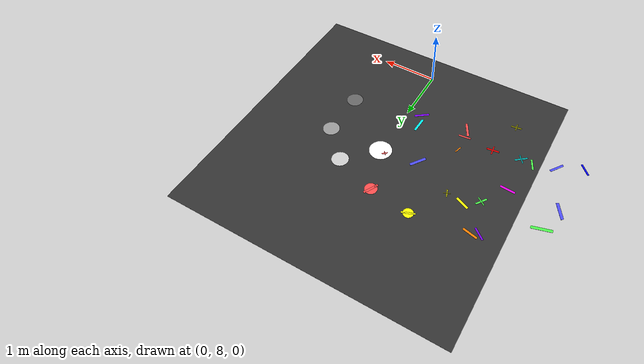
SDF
<sdf version="1.6">
 <world name="default">
  <model name="sector_0_2">
   <static>true</static>
   <pose>0 10 0.001 0 0 0</pose>
   <link name="link">
    <visual name="base">
     <geometry><box><size>5 5 0.001</size></box></geometry>
     <material><ambient>0.1 0.1 0.1 1</ambient><diffuse>0.2 0.2 0.2 1</diffuse></material>
    </visual>
    <visual name="spiral1">
     <pose>0 0 0.002 0 0 0</pose>
     <geometry><cylinder><radius>0.2</radius><length>0.001</length></cylinder></geometry>
     <material><ambient>1 1 1 1</ambient><diffuse>1 1 1 1</diffuse></material>
    </visual>
    <visual name="spiral2">
     <pose>0.5 0.5 0.002 0 0 0</pose>
     <geometry><cylinder><radius>0.15</radius><length>0.001</length></cylinder></geometry>
     <material><ambient>0.8 0.8 0.8 1</ambient><diffuse>0.8 0.8 0.8 1</diffuse></material>
    </visual>
    <visual name="spiral3">
     <pose>1 0 0.002 0 0 0</pose>
     <geometry><cylinder><radius>0.15</radius><length>0.001</length></cylinder></geometry>
     <material><ambient>0.6 0.6 0.6 1</ambient><diffuse>0.6 0.6 0.6 1</diffuse></material>
    </visual>
    <visual name="spiral4">
     <pose>1 -0.8 0.002 0 0 0</pose>
     <geometry><cylinder><radius>0.15</radius><length>0.001</length></cylinder></geometry>
     <material><ambient>0.4 0.4 0.4 1</ambient><diffuse>0.4 0.4 0.4 1</diffuse></material>
    </visual>
   </link>
  </model>
  <model name="letter_M_994">
   <static>true</static>
   <pose>-3.16 8.70 0.011 0 0 2.329</pose>
   <link name="link">
    <visual name="visual">
     <geometry><box><size>0.23 0.03 0.002</size></box></geometry>
     <material>
      <ambient>0.0 0.0 1.0 1</ambient>
      <diffuse>0.0 0.0 1.0 1</diffuse>
      <specular>0.1 0.1 0.1 1</specular>
     </material>
    </visual>
   </link>
  </model>
  <model name="letter_V_995">
   <static>true</static>
   <pose>-2.74 8.89 0.004 0 0 4.089</pose>
   <link name="link">
    <visual name="visual">
     <geometry><box><size>0.26 0.04 0.002</size></box></geometry>
     <material>
      <ambient>0.3 0.3 1.0 1</ambient>
      <diffuse>0.3 0.3 1.0 1</diffuse>
      <specular>0.1 0.1 0.1 1</specular>
     </material>
    </visual>
   </link>
  </model>
  <model name="letter_X_996">
   <static>true</static>
   <pose>-3.05 9.68 0.003 0 0 5.277</pose>
   <link name="link">
    <visual name="visual">
     <geometry><box><size>0.31 0.05 0.002</size></box></geometry>
     <material>
      <ambient>0.3 0.3 1.0 1</ambient>
      <diffuse>0.3 0.3 1.0 1</diffuse>
      <specular>0.1 0.1 0.1 1</specular>
     </material>
    </visual>
   </link>
  </model>
  <model name="letter_S_997">
   <static>true</static>
   <pose>-2.91 10.13 0.005 0 0 3.406</pose>
   <link name="link">
    <visual name="visual">
     <geometry><box><size>0.34 0.05 0.002</size></box></geometry>
     <material>
      <ambient>0.3 1.0 0.3 1</ambient>
      <diffuse>0.3 1.0 0.3 1</diffuse>
      <specular>0.1 0.1 0.1 1</specular>
     </material>
    </visual>
   </link>
  </model>
  <model name="letter_T_1054">
   <static>true</static>
   <pose>-1.84 8.38 0.010 0 0 3.263</pose>
   <link name="link">
    <visual name="visual">
     <geometry><box><size>0.19 0.03 0.002</size></box></geometry>
     <material>
      <ambient>0.5 0.5 0.0 1</ambient>
      <diffuse>0.5 0.5 0.0 1</diffuse>
      <specular>0.1 0.1 0.1 1</specular>
     </material>
    </visual>
    <visual name="visual2">
     <pose>0 0 0.001 0 0 1.57</pose>
     <geometry><box><size>0.15 0.02 0.001</size></box></geometry>
     <material><ambient>0.5 0.5 0.0 1</ambient><diffuse>0.5 0.5 0.0 1</diffuse></material>
    </visual>
   </link>
  </model>
  <model name="letter_Z_1056">
   <static>true</static>
   <pose>-2.36 9.02 0.004 0 0 5.157</pose>
   <link name="link">
    <visual name="visual">
     <geometry><box><size>0.22 0.03 0.002</size></box></geometry>
     <material>
      <ambient>0.3 1.0 0.3 1</ambient>
      <diffuse>0.3 1.0 0.3 1</diffuse>
      <specular>0.1 0.1 0.1 1</specular>
     </material>
    </visual>
   </link>
  </model>
  <model name="letter_L_1057">
   <static>true</static>
   <pose>-1.67 9.06 0.006 0 0 0.122</pose>
   <link name="link">
    <visual name="visual">
     <geometry><box><size>0.22 0.03 0.002</size></box></geometry>
     <material>
      <ambient>1.0 0.0 0.0 1</ambient>
      <diffuse>1.0 0.0 0.0 1</diffuse>
      <specular>0.1 0.1 0.1 1</specular>
     </material>
    </visual>
    <visual name="visual2">
     <pose>0 0 0.001 0 0 1.57</pose>
     <geometry><box><size>0.18 0.02 0.001</size></box></geometry>
     <material><ambient>1.0 0.0 0.0 1</ambient><diffuse>1.0 0.0 0.0 1</diffuse></material>
    </visual>
   </link>
  </model>
  <model name="letter_E_1058">
   <static>true</static>
   <pose>-2.16 9.00 0.003 0 0 3.809</pose>
   <link name="link">
    <visual name="visual">
     <geometry><box><size>0.23 0.03 0.002</size></box></geometry>
     <material>
      <ambient>0.0 0.7 0.7 1</ambient>
      <diffuse>0.0 0.7 0.7 1</diffuse>
      <specular>0.1 0.1 0.1 1</specular>
     </material>
    </visual>
    <visual name="visual2">
     <pose>0 0 0.001 0 0 1.57</pose>
     <geometry><box><size>0.18 0.02 0.001</size></box></geometry>
     <material><ambient>0.0 0.7 0.7 1</ambient><diffuse>0.0 0.7 0.7 1</diffuse></material>
    </visual>
   </link>
  </model>
  <model name="letter_A_1059">
   <static>true</static>
   <pose>-1.91 10.12 0.005 0 0 4.090</pose>
   <link name="link">
    <visual name="visual">
     <geometry><box><size>0.21 0.03 0.002</size></box></geometry>
     <material>
      <ambient>0.3 1.0 0.3 1</ambient>
      <diffuse>0.3 1.0 0.3 1</diffuse>
      <specular>0.1 0.1 0.1 1</specular>
     </material>
    </visual>
    <visual name="visual2">
     <pose>0 0 0.001 0 0 1.57</pose>
     <geometry><box><size>0.17 0.02 0.001</size></box></geometry>
     <material><ambient>0.3 1.0 0.3 1</ambient><diffuse>0.3 1.0 0.3 1</diffuse></material>
    </visual>
   </link>
  </model>
  <model name="letter_Z_1060">
   <static>true</static>
   <pose>-1.66 10.30 0.007 0 0 2.729</pose>
   <link name="link">
    <visual name="visual">
     <geometry><box><size>0.25 0.04 0.002</size></box></geometry>
     <material>
      <ambient>1.0 1.0 0.0 1</ambient>
      <diffuse>1.0 1.0 0.0 1</diffuse>
      <specular>0.1 0.1 0.1 1</specular>
     </material>
    </visual>
   </link>
  </model>
  <model name="letter_K_1061">
   <static>true</static>
   <pose>-2.19 9.70 0.011 0 0 6.211</pose>
   <link name="link">
    <visual name="visual">
     <geometry><box><size>0.26 0.04 0.002</size></box></geometry>
     <material>
      <ambient>1.0 0.0 1.0 1</ambient>
      <diffuse>1.0 0.0 1.0 1</diffuse>
      <specular>0.1 0.1 0.1 1</specular>
     </material>
    </visual>
   </link>
  </model>
  <model name="letter_V_1063">
   <static>true</static>
   <pose>-1.99 10.74 0.006 0 0 6.066</pose>
   <link name="link">
    <visual name="visual">
     <geometry><box><size>0.26 0.04 0.002</size></box></geometry>
     <material>
      <ambient>1.0 0.5 0.0 1</ambient>
      <diffuse>1.0 0.5 0.0 1</diffuse>
      <specular>0.1 0.1 0.1 1</specular>
     </material>
    </visual>
   </link>
  </model>
  <model name="letter_Y_1064">
   <static>true</static>
   <pose>-2.11 10.68 0.005 0 0 5.608</pose>
   <link name="link">
    <visual name="visual">
     <geometry><box><size>0.23 0.03 0.002</size></box></geometry>
     <material>
      <ambient>0.5 0.0 1.0 1</ambient>
      <diffuse>0.5 0.0 1.0 1</diffuse>
      <specular>0.1 0.1 0.1 1</specular>
     </material>
    </visual>
   </link>
  </model>
  <model name="letter_X_1116">
   <static>true</static>
   <pose>-1.15 9.34 0.008 0 0 4.419</pose>
   <link name="link">
    <visual name="visual">
     <geometry><box><size>0.14 0.02 0.002</size></box></geometry>
     <material>
      <ambient>1.0 0.5 0.0 1</ambient>
      <diffuse>1.0 0.5 0.0 1</diffuse>
      <specular>0.1 0.1 0.1 1</specular>
     </material>
    </visual>
   </link>
  </model>
  <model name="letter_Z_1117">
   <static>true</static>
   <pose>-1.13 9.03 0.012 0 0 3.238</pose>
   <link name="link">
    <visual name="visual">
     <geometry><box><size>0.22 0.03 0.002</size></box></geometry>
     <material>
      <ambient>1.0 0.3 0.3 1</ambient>
      <diffuse>1.0 0.3 0.3 1</diffuse>
      <specular>0.1 0.1 0.1 1</specular>
     </material>
    </visual>
   </link>
  </model>
  <model name="letter_Y_1118">
   <static>true</static>
   <pose>-1.10 8.85 0.009 0 0 2.084</pose>
   <link name="link">
    <visual name="visual">
     <geometry><box><size>0.29 0.04 0.002</size></box></geometry>
     <material>
      <ambient>1.0 0.3 0.3 1</ambient>
      <diffuse>1.0 0.3 0.3 1</diffuse>
      <specular>0.1 0.1 0.1 1</specular>
     </material>
    </visual>
   </link>
  </model>
  <model name="letter_E_1119">
   <static>true</static>
   <pose>-1.37 10.25 0.013 0 0 5.059</pose>
   <link name="link">
    <visual name="visual">
     <geometry><box><size>0.15 0.02 0.002</size></box></geometry>
     <material>
      <ambient>0.7 0.7 0.0 1</ambient>
      <diffuse>0.7 0.7 0.0 1</diffuse>
      <specular>0.1 0.1 0.1 1</specular>
     </material>
    </visual>
    <visual name="visual2">
     <pose>0 0 0.001 0 0 1.57</pose>
     <geometry><box><size>0.12 0.01 0.001</size></box></geometry>
     <material><ambient>0.7 0.7 0.0 1</ambient><diffuse>0.7 0.7 0.0 1</diffuse></material>
    </visual>
   </link>
  </model>
  <model name="letter_S_1120">
   <static>true</static>
   <pose>-0.67 9.91 0.011 0 0 4.098</pose>
   <link name="link">
    <visual name="visual">
     <geometry><box><size>0.30 0.05 0.002</size></box></geometry>
     <material>
      <ambient>0.3 0.3 1.0 1</ambient>
      <diffuse>0.3 0.3 1.0 1</diffuse>
      <specular>0.1 0.1 0.1 1</specular>
     </material>
    </visual>
   </link>
  </model>
  <model name="letter_O_1122">
   <static>true</static>
   <pose>-1.00 10.88 0.003 0 0 0.343</pose>
   <link name="link">
    <visual name="visual">
     <geometry><box><size>0.23 0.03 0.002</size></box></geometry>
     <material>
      <ambient>1.0 1.0 0.0 1</ambient>
      <diffuse>1.0 1.0 0.0 1</diffuse>
      <specular>0.1 0.1 0.1 1</specular>
     </material>
    </visual>
    <visual name="visual2">
     <geometry><cylinder><radius>0.09</radius><length>0.002</length></cylinder></geometry>
     <material><ambient>1.0 1.0 0.0 1</ambient><diffuse>1.0 1.0 0.0 1</diffuse></material>
    </visual>
   </link>
  </model>
  <model name="letter_M_1175">
   <static>true</static>
   <pose>-0.31 9.17 0.009 0 0 1.531</pose>
   <link name="link">
    <visual name="visual">
     <geometry><box><size>0.29 0.04 0.002</size></box></geometry>
     <material>
      <ambient>0.0 1.0 1.0 1</ambient>
      <diffuse>0.0 1.0 1.0 1</diffuse>
      <specular>0.1 0.1 0.1 1</specular>
     </material>
    </visual>
   </link>
  </model>
  <model name="letter_Z_1176">
   <static>true</static>
   <pose>-0.25 8.94 0.011 0 0 0.630</pose>
   <link name="link">
    <visual name="visual">
     <geometry><box><size>0.26 0.04 0.002</size></box></geometry>
     <material>
      <ambient>0.5 0.0 1.0 1</ambient>
      <diffuse>0.5 0.0 1.0 1</diffuse>
      <specular>0.1 0.1 0.1 1</specular>
     </material>
    </visual>
   </link>
  </model>
  <model name="letter_H_1178">
   <static>true</static>
   <pose>-0.10 10.03 0.013 0 0 0.712</pose>
   <link name="link">
    <visual name="visual">
     <geometry><box><size>0.10 0.02 0.002</size></box></geometry>
     <material>
      <ambient>1.0 0.3 0.3 1</ambient>
      <diffuse>1.0 0.3 0.3 1</diffuse>
      <specular>0.1 0.1 0.1 1</specular>
     </material>
    </visual>
    <visual name="visual2">
     <pose>0 0 0.001 0 0 1.57</pose>
     <geometry><box><size>0.08 0.01 0.001</size></box></geometry>
     <material><ambient>1.0 0.3 0.3 1</ambient><diffuse>1.0 0.3 0.3 1</diffuse></material>
    </visual>
   </link>
  </model>
  <model name="letter_G_1182">
   <static>true</static>
   <pose>-0.26 10.77 0.003 0 0 4.231</pose>
   <link name="link">
    <visual name="visual">
     <geometry><box><size>0.27 0.04 0.002</size></box></geometry>
     <material>
      <ambient>1.0 0.3 0.3 1</ambient>
      <diffuse>1.0 0.3 0.3 1</diffuse>
      <specular>0.1 0.1 0.1 1</specular>
     </material>
    </visual>
    <visual name="visual2">
     <geometry><cylinder><radius>0.11</radius><length>0.002</length></cylinder></geometry>
     <material><ambient>1.0 0.3 0.3 1</ambient><diffuse>1.0 0.3 0.3 1</diffuse></material>
    </visual>
   </link>
  </model>
 </world>
</sdf>
